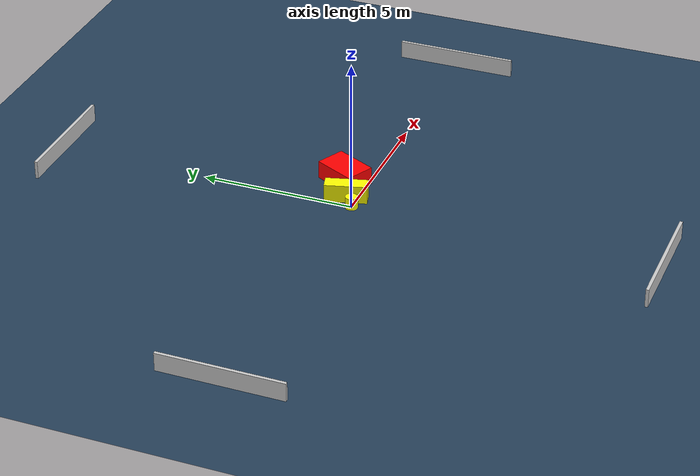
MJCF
<?xml version="1.0" ?>
<mujoco model="generated_environment">
  <option timestep="0.01" integrator="RK4" cone="elliptic"/>
  <default>
    <geom density="1"/>
  </default>
  <asset>
    <texture builtin="gradient" height="3072" name="skybox" rgb1="0.3 0.5 0.7" rgb2="0 0 0" type="skybox" width="512"/>
    <texture builtin="checker" height="300" name="groundplane" rgb1="0.2 0.3 0.4" rgb2="0.1 0.2 0.3" type="2d" width="300"/>
    <material name="groundplane" reflectance="0.2" texrepeat="5 5" texture="groundplane"/>
  </asset>
  <worldbody>
    <light dir="0 0 -1" directional="true" pos="0 0 1.5"/>
    <geom condim="3" friction="0.5 0.005 0.001" material="groundplane" name="floor" pos="0 0 0" size="0 0 0.05" type="plane"/>
    <body name="walls">
      <geom name="wall_1" condim="4" pos="-10.0 0.0 0.3" rgba="0.800000011920929 0.800000011920929 0.800000011920929 1.0" size="0.05 2.0 0.3" type="box"/>
      <geom name="wall_2" condim="4" pos="10.0 0.0 0.3" rgba="0.800000011920929 0.800000011920929 0.800000011920929 1.0" size="0.05 2.0 0.3" type="box"/>
      <geom name="wall_3" condim="4" pos="0.0 -10.0 0.3" rgba="0.800000011920929 0.800000011920929 0.800000011920929 1.0" size="2.0 0.05 0.3" type="box"/>
      <geom name="wall_4" condim="4" pos="0.0 10.0 0.3" rgba="0.800000011920929 0.800000011920929 0.800000011920929 1.0" size="2.0 0.05 0.3" type="box"/>
    </body>
    <body name="robot">
      <joint name="joint_x" type="slide" pos="0 0 0" axis="1 0 0"/>
      <joint name="joint_y" type="slide" pos="0 0 0" axis="0 1 0"/>
      <geom name="robot" type="cylinder" pos="0.0 0.0 0.2" size="0.2 0.2 0.0" mass="5.0" friction="1.0 0.005 0.0001" condim="4" rgba="1.0 1.0 0.0 1.0"/>
    </body>
    <body name="obstacle_1_movable">
      <geom name="obstacle_1_movable" condim="4" pos="0.41294710241814153 0.3410452296787781 0.3" euler="0 0 285.1989667638368" friction="0.0 0.005 0.001" rgba="1.0 1.0 0.0 1.0" size="0.6846618389954764 0.23238918625143457 0.3" type="box" mass="0.1"/>
      <joint type="free"/>
    </body>
    <body name="obstacle_2_static">
      <geom name="obstacle_2_static" condim="4" pos="1.4270306787521225 0.7777986694555225 0.3" euler="0 0 243.6998758845746" friction="0.0 0.005 0.001" rgba="1.0 0.0 0.0 1.0" size="0.711589558919971 0.48711598834683495 0.3" type="box"/>
    </body>
  </worldbody>
  <actuator>
    <motor name="actuator_x" joint="joint_x" gear="1" ctrlrange="-1 1"/>
    <motor name="actuator_y" joint="joint_y" gear="1" ctrlrange="-1 1"/>
  </actuator>
</mujoco>
